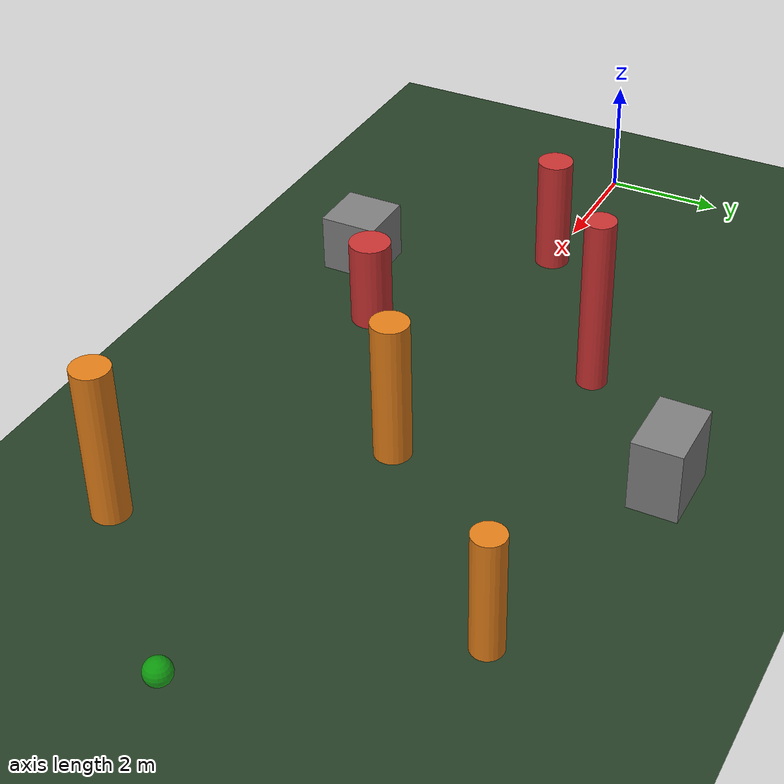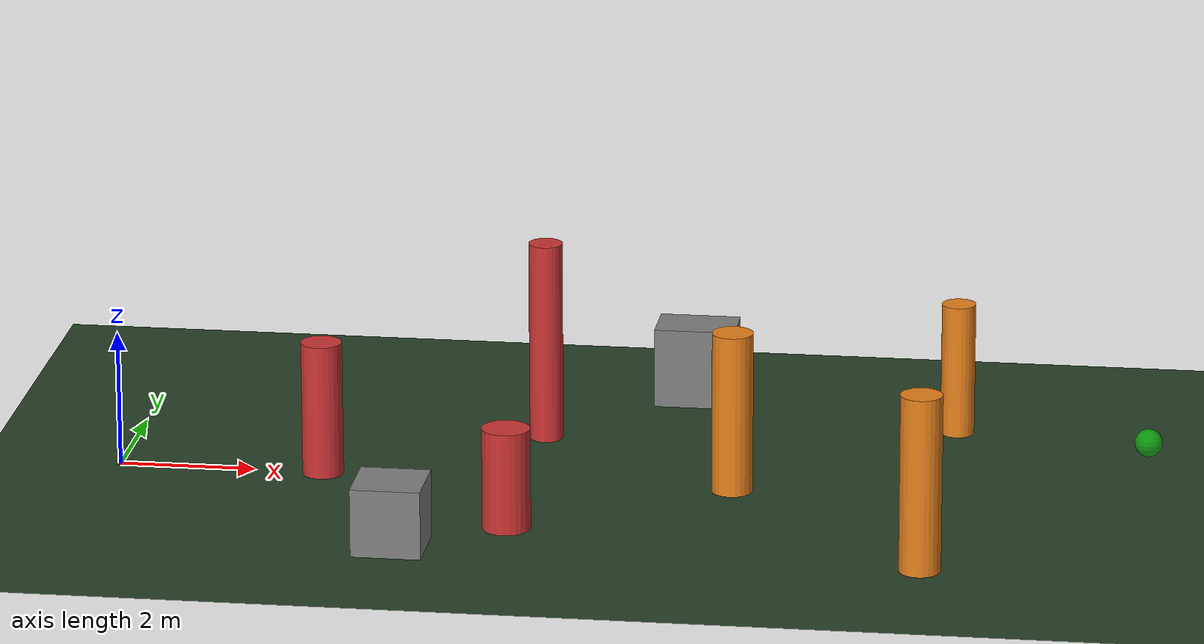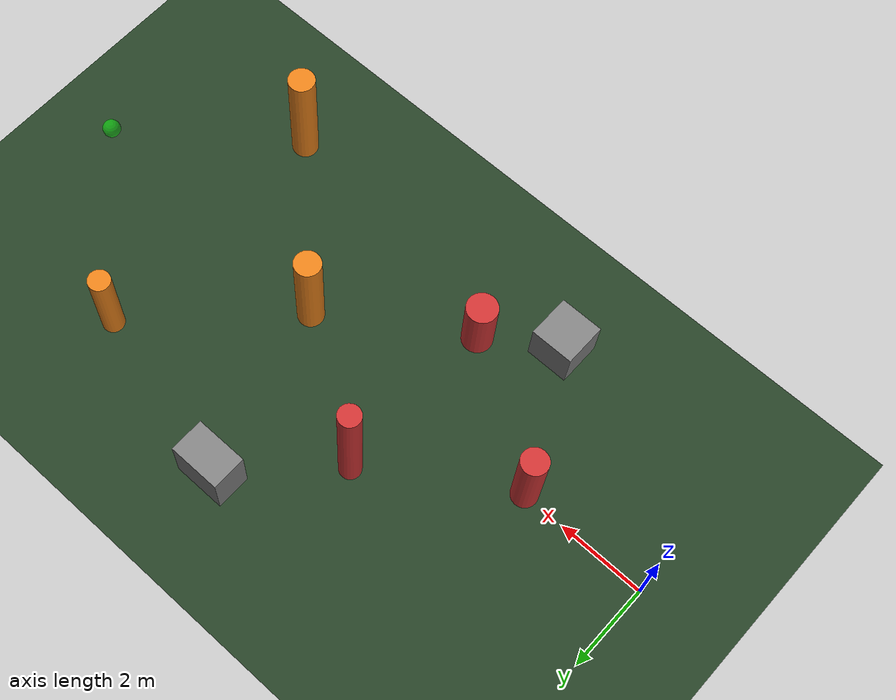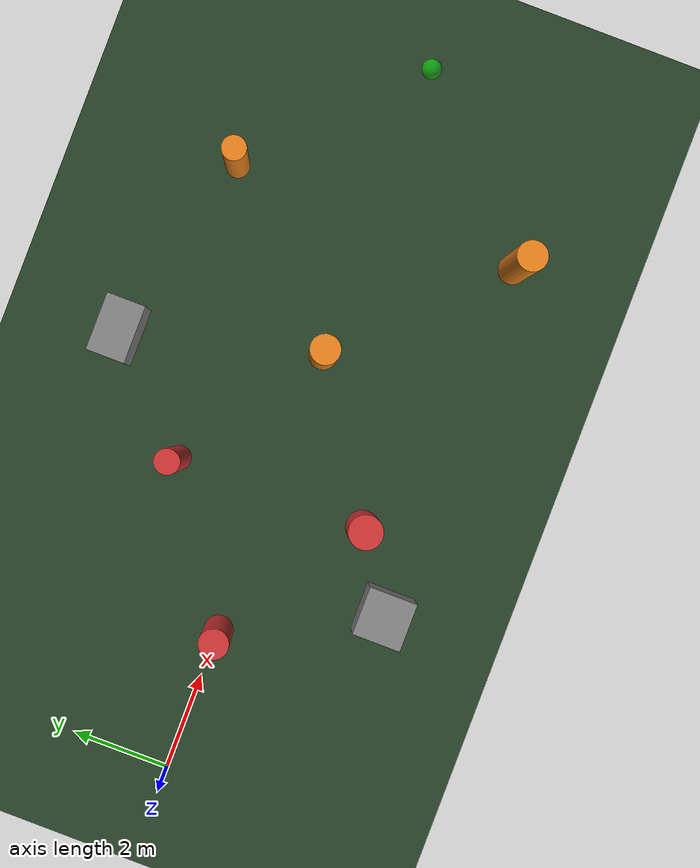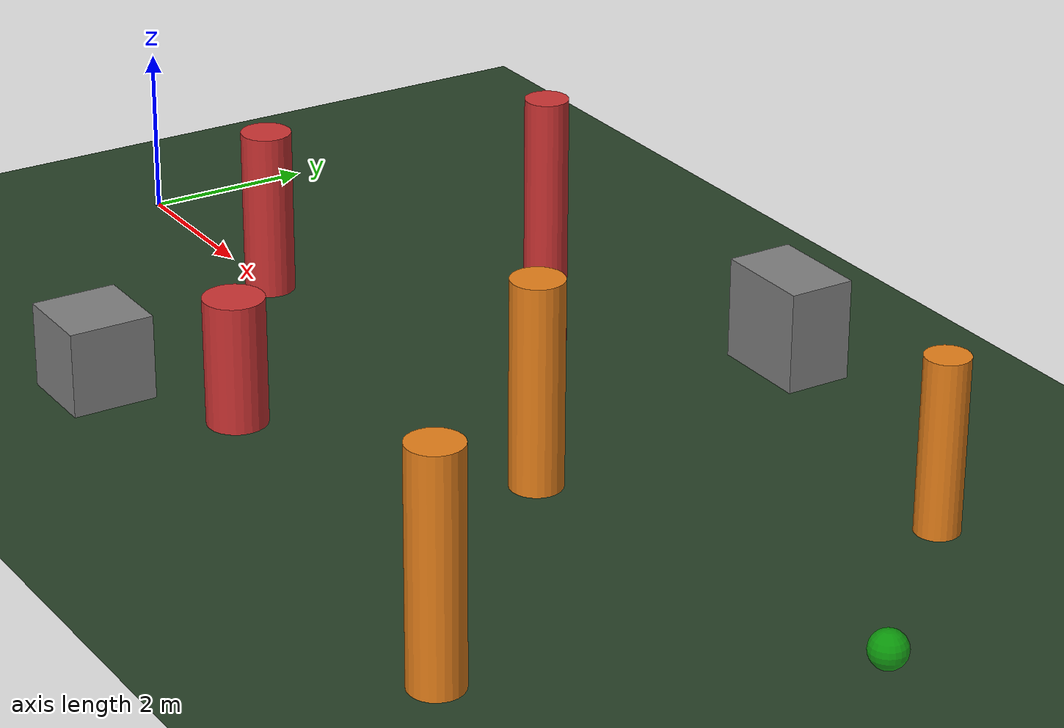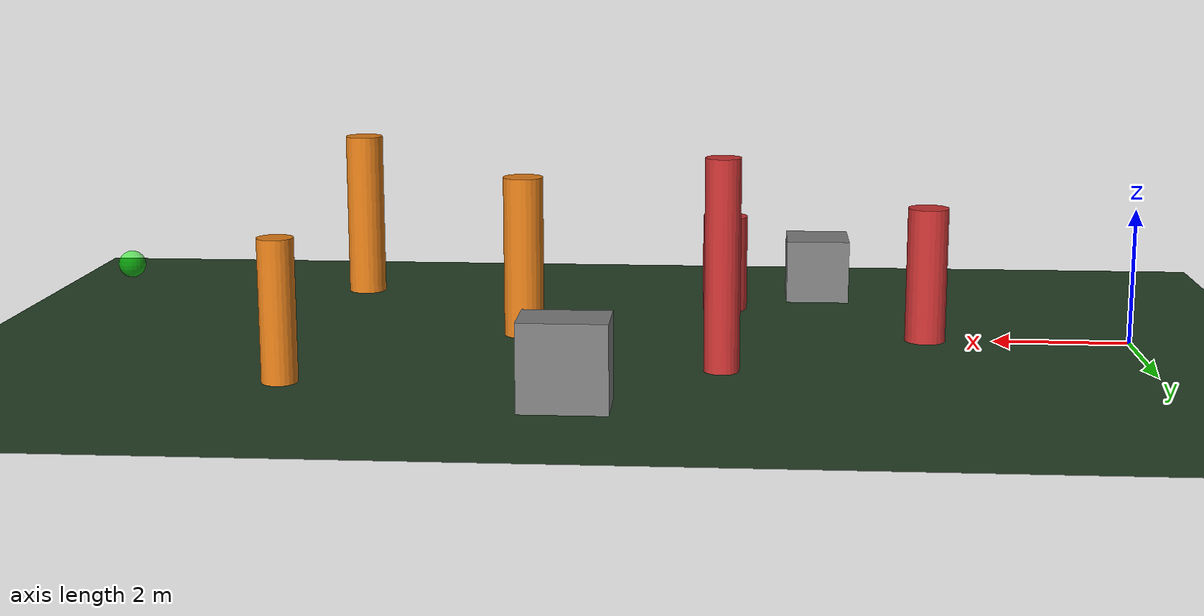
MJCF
<mujoco model="cf2_obstacle_world">
  <!-- Include the Crazyflie 2 drone model with lidar -->
  <include file="cf2.xml"/>

  <compiler angle="degree"/>

  <option timestep="0.002" gravity="0 0 -9.81"
          density="1.225" viscosity="1.81e-5" wind="0 0 0">
    <!-- density: air density at sea level (kg/m³) -->
    <!-- viscosity: dynamic viscosity of air at 20°C (Pa·s) -->
    <!-- wind: global wind velocity (modify for turbulence simulation) -->
    <flag warmstart="enable"/>
  </option>

  <statistic center="5 0 1" extent="15" meansize="0.5"/>

  <visual>
    <headlight diffuse="0.6 0.6 0.6" ambient="0.3 0.3 0.3" specular="0 0 0"/>
    <rgba haze="0.15 0.25 0.35 1"/>
    <global azimuth="120" elevation="-20"/>
  </visual>

  <asset>
    <!-- Ground textures -->
    <texture name="grid" type="2d" builtin="checker" width="512" height="512"
      rgb1="0.2 0.3 0.2" rgb2="0.1 0.2 0.1"/>
    <material name="grid" texture="grid" texrepeat="10 10" reflectance="0.1"/>

    <!-- Skybox -->
    <texture name="sky" type="skybox" builtin="gradient" rgb1="0.3 0.5 0.7"
      rgb2="0.0 0.0 0.0" width="800" height="800"/>

    <!-- Obstacle materials -->
    <material name="obstacle_red" rgba="0.8 0.2 0.2 1"/>
    <material name="obstacle_orange" rgba="0.9 0.5 0.1 1"/>
    <material name="obstacle_gray" rgba="0.5 0.5 0.5 1"/>
  </asset>

  <worldbody>
    <!-- Lighting -->
    <light directional="true" pos="0 0 10" dir="0 0 -1" diffuse="0.8 0.8 0.8"/>
    <light directional="true" pos="5 5 10" dir="-1 -1 -2" diffuse="0.4 0.4 0.4"/>

    <!-- Ground Plane -->
    <geom name="ground" type="plane" size="20 20 0.1" material="grid" condim="3" friction="1 0.005 0.0001"/>

    <!-- Cylindrical Obstacles -->
    <body name="obstacle1" pos="3 0 1">
      <geom type="cylinder" size="0.3 1" material="obstacle_red" mass="100"/>
    </body>

    <body name="obstacle2" pos="6 2 1.5">
      <geom type="cylinder" size="0.25 1.5" material="obstacle_red" mass="100"/>
    </body>

    <body name="obstacle3" pos="6 -2 0.75">
      <geom type="cylinder" size="0.35 0.75" material="obstacle_red" mass="100"/>
    </body>

    <body name="obstacle4" pos="9 0 1.2">
      <geom type="cylinder" size="0.3 1.2" material="obstacle_orange" mass="100"/>
    </body>

    <body name="obstacle5" pos="12 3 1">
      <geom type="cylinder" size="0.25 1" material="obstacle_orange" mass="100"/>
    </body>

    <body name="obstacle6" pos="12 -3 1.3">
      <geom type="cylinder" size="0.3 1.3" material="obstacle_orange" mass="100"/>
    </body>

    <!-- Box Obstacles -->
    <body name="box_obstacle1" pos="4.5 -3 0.5">
      <geom type="box" size="0.5 0.5 0.5" material="obstacle_gray" mass="100"/>
    </body>

    <body name="box_obstacle2" pos="8 4 0.6">
      <geom type="box" size="0.6 0.4 0.6" material="obstacle_gray" mass="100"/>
    </body>

    <!-- Goal marker (optional visual indicator) -->
    <body name="goal" pos="15 0 1">
      <geom type="sphere" size="0.2" rgba="0 1 0 0.5" contype="0" conaffinity="0"/>
    </body>
  </worldbody>
</mujoco>
